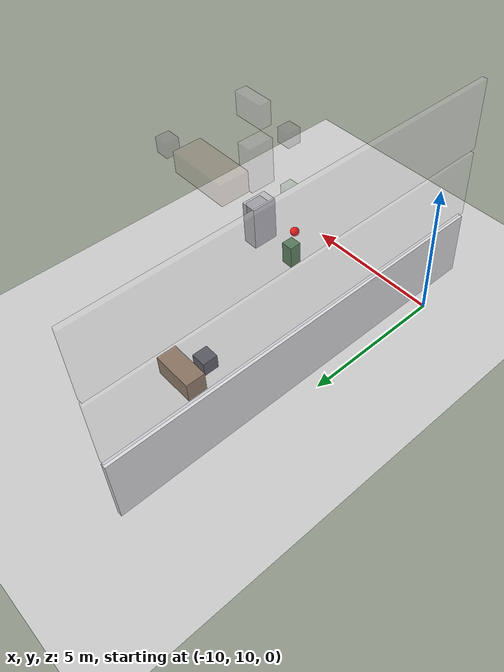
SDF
<sdf version="1.7">
 <world name="generated_world">
  <include><uri>model://sun</uri></include>
  <include><uri>model://ground_plane</uri></include>
  <model name="generated_building">
   <static>true</static>
   <link name="floor_0_room_0_west_wall">
    <pose>-9.4100 14.8650 1.2250 0.0000 0.0000 0.0000</pose>
    <collision name="floor_0_room_0_west_wall_collision">
     <geometry><box><size>0.1800 14.0300 2.4500</size></box></geometry>
    </collision>
    <visual name="floor_0_room_0_west_wall_visual">
     <geometry><box><size>0.1800 14.0300 2.4500</size></box></geometry>
     <material><ambient>0.86 0.86 0.88 1</ambient><diffuse>0.86 0.86 0.88 1</diffuse></material>
    </visual>
    <gravity>false</gravity>
   </link>
   <link name="floor_0_room_0_desk">
    <pose>-7.0000 17.9225 0.4500 0.0000 0.0000 0.0000</pose>
    <collision name="floor_0_room_0_desk_collision">
     <geometry><box><size>1.5000 0.7000 0.7500</size></box></geometry>
    </collision>
    <visual name="floor_0_room_0_desk_visual">
     <geometry><box><size>1.5000 0.7000 0.7500</size></box></geometry>
     <material><ambient>0.54 0.43 0.34 1</ambient><diffuse>0.54 0.43 0.34 1</diffuse></material>
    </visual>
    <gravity>false</gravity>
   </link>
   <link name="floor_0_room_0_chair">
    <pose>-7.0000 17.0225 0.2800 0.0000 0.0000 0.0000</pose>
    <collision name="floor_0_room_0_chair_collision">
     <geometry><box><size>0.5500 0.5500 0.5500</size></box></geometry>
    </collision>
    <visual name="floor_0_room_0_chair_visual">
     <geometry><box><size>0.5500 0.5500 0.5500</size></box></geometry>
     <material><ambient>0.30 0.30 0.34 1</ambient><diffuse>0.30 0.30 0.34 1</diffuse></material>
    </visual>
    <gravity>false</gravity>
   </link>
   <link name="floor_0_room_0_cabinet">
    <pose>-3.6000 11.8075 0.9000 0.0000 0.0000 0.0000</pose>
    <collision name="floor_0_room_0_cabinet_collision">
     <geometry><box><size>0.6000 1.0000 1.8000</size></box></geometry>
    </collision>
    <visual name="floor_0_room_0_cabinet_visual">
     <geometry><box><size>0.6000 1.0000 1.8000</size></box></geometry>
     <material><ambient>0.72 0.72 0.74 1</ambient><diffuse>0.72 0.72 0.74 1</diffuse></material>
    </visual>
    <gravity>false</gravity>
   </link>
   <link name="floor_0_room_0_planter">
    <pose>-5.3000 11.8075 0.4500 0.0000 0.0000 0.0000</pose>
    <collision name="floor_0_room_0_planter_collision">
     <geometry><box><size>0.4500 0.4500 0.9000</size></box></geometry>
    </collision>
    <visual name="floor_0_room_0_planter_visual">
     <geometry><box><size>0.4500 0.4500 0.9000</size></box></geometry>
     <material><ambient>0.28 0.46 0.30 1</ambient><diffuse>0.28 0.46 0.30 1</diffuse></material>
    </visual>
    <gravity>false</gravity>
   </link>
   <link name="floor_1_room_0_west_wall">
    <pose>-9.4100 14.8650 3.8250 0.0000 0.0000 0.0000</pose>
    <collision name="floor_1_room_0_west_wall_collision">
     <geometry><box><size>0.1800 14.0300 2.4500</size></box></geometry>
    </collision>
    <visual name="floor_1_room_0_west_wall_visual">
     <geometry><box><size>0.1800 14.0300 2.4500</size></box></geometry>
     <material><ambient>0.86 0.86 0.88 1</ambient><diffuse>0.86 0.86 0.88 1</diffuse></material>
     <transparency>0.80</transparency>
    </visual>
    <gravity>false</gravity>
   </link>
   <link name="floor_1_room_0_desk">
    <pose>-7.0000 17.9225 3.0500 0.0000 0.0000 0.0000</pose>
    <collision name="floor_1_room_0_desk_collision">
     <geometry><box><size>1.5000 0.7000 0.7500</size></box></geometry>
    </collision>
    <visual name="floor_1_room_0_desk_visual">
     <geometry><box><size>1.5000 0.7000 0.7500</size></box></geometry>
     <material><ambient>0.54 0.43 0.34 1</ambient><diffuse>0.54 0.43 0.34 1</diffuse></material>
     <transparency>0.80</transparency>
    </visual>
    <gravity>false</gravity>
   </link>
   <link name="floor_1_room_0_chair">
    <pose>-7.0000 17.0225 2.8800 0.0000 0.0000 0.0000</pose>
    <collision name="floor_1_room_0_chair_collision">
     <geometry><box><size>0.5500 0.5500 0.5500</size></box></geometry>
    </collision>
    <visual name="floor_1_room_0_chair_visual">
     <geometry><box><size>0.5500 0.5500 0.5500</size></box></geometry>
     <material><ambient>0.30 0.30 0.34 1</ambient><diffuse>0.30 0.30 0.34 1</diffuse></material>
     <transparency>0.80</transparency>
    </visual>
    <gravity>false</gravity>
   </link>
   <link name="floor_1_room_0_cabinet">
    <pose>-3.6000 11.8075 3.5000 0.0000 0.0000 0.0000</pose>
    <collision name="floor_1_room_0_cabinet_collision">
     <geometry><box><size>0.6000 1.0000 1.8000</size></box></geometry>
    </collision>
    <visual name="floor_1_room_0_cabinet_visual">
     <geometry><box><size>0.6000 1.0000 1.8000</size></box></geometry>
     <material><ambient>0.72 0.72 0.74 1</ambient><diffuse>0.72 0.72 0.74 1</diffuse></material>
     <transparency>0.80</transparency>
    </visual>
    <gravity>false</gravity>
   </link>
   <link name="floor_1_room_0_planter">
    <pose>-5.3000 11.8075 3.0500 0.0000 0.0000 0.0000</pose>
    <collision name="floor_1_room_0_planter_collision">
     <geometry><box><size>0.4500 0.4500 0.9000</size></box></geometry>
    </collision>
    <visual name="floor_1_room_0_planter_visual">
     <geometry><box><size>0.4500 0.4500 0.9000</size></box></geometry>
     <material><ambient>0.28 0.46 0.30 1</ambient><diffuse>0.28 0.46 0.30 1</diffuse></material>
     <transparency>0.80</transparency>
    </visual>
    <gravity>false</gravity>
   </link>
   <link name="floor_2_room_0_west_wall">
    <pose>-9.4100 14.8650 6.4250 0.0000 0.0000 0.0000</pose>
    <collision name="floor_2_room_0_west_wall_collision">
     <geometry><box><size>0.1800 14.0300 2.4500</size></box></geometry>
    </collision>
    <visual name="floor_2_room_0_west_wall_visual">
     <geometry><box><size>0.1800 14.0300 2.4500</size></box></geometry>
     <material><ambient>0.86 0.86 0.88 1</ambient><diffuse>0.86 0.86 0.88 1</diffuse></material>
     <transparency>0.80</transparency>
    </visual>
    <gravity>false</gravity>
   </link>
   <link name="floor_2_room_0_table">
    <pose>-5.3000 14.8650 5.6500 0.0000 0.0000 0.0000</pose>
    <collision name="floor_2_room_0_table_collision">
     <geometry><box><size>2.2000 1.0000 0.7500</size></box></geometry>
    </collision>
    <visual name="floor_2_room_0_table_visual">
     <geometry><box><size>2.2000 1.0000 0.7500</size></box></geometry>
     <material><ambient>0.50 0.38 0.28 1</ambient><diffuse>0.50 0.38 0.28 1</diffuse></material>
     <transparency>0.80</transparency>
    </visual>
    <gravity>false</gravity>
   </link>
   <link name="floor_2_room_0_chair_south">
    <pose>-5.3000 11.8075 5.4800 0.0000 0.0000 0.0000</pose>
    <collision name="floor_2_room_0_chair_south_collision">
     <geometry><box><size>0.5000 0.5000 0.5500</size></box></geometry>
    </collision>
    <visual name="floor_2_room_0_chair_south_visual">
     <geometry><box><size>0.5000 0.5000 0.5500</size></box></geometry>
     <material><ambient>0.30 0.30 0.34 1</ambient><diffuse>0.30 0.30 0.34 1</diffuse></material>
     <transparency>0.80</transparency>
    </visual>
    <gravity>false</gravity>
   </link>
   <link name="floor_2_room_0_chair_west">
    <pose>-7.4500 14.8650 5.4800 0.0000 0.0000 1.5700</pose>
    <collision name="floor_2_room_0_chair_west_collision">
     <geometry><box><size>0.5000 0.5000 0.5500</size></box></geometry>
    </collision>
    <visual name="floor_2_room_0_chair_west_visual">
     <geometry><box><size>0.5000 0.5000 0.5500</size></box></geometry>
     <material><ambient>0.30 0.30 0.34 1</ambient><diffuse>0.30 0.30 0.34 1</diffuse></material>
     <transparency>0.80</transparency>
    </visual>
    <gravity>false</gravity>
   </link>
   <link name="floor_2_room_0_chair_east">
    <pose>-3.1500 14.8650 5.4800 0.0000 0.0000 1.5700</pose>
    <collision name="floor_2_room_0_chair_east_collision">
     <geometry><box><size>0.5000 0.5000 0.5500</size></box></geometry>
    </collision>
    <visual name="floor_2_room_0_chair_east_visual">
     <geometry><box><size>0.5000 0.5000 0.5500</size></box></geometry>
     <material><ambient>0.30 0.30 0.34 1</ambient><diffuse>0.30 0.30 0.34 1</diffuse></material>
     <transparency>0.80</transparency>
    </visual>
    <gravity>false</gravity>
   </link>
   <link name="floor_2_room_0_credenza">
    <pose>-3.6000 11.8075 5.6500 0.0000 0.0000 0.0000</pose>
    <collision name="floor_2_room_0_credenza_collision">
     <geometry><box><size>1.2000 0.4500 0.9000</size></box></geometry>
    </collision>
    <visual name="floor_2_room_0_credenza_visual">
     <geometry><box><size>1.2000 0.4500 0.9000</size></box></geometry>
     <material><ambient>0.72 0.72 0.74 1</ambient><diffuse>0.72 0.72 0.74 1</diffuse></material>
     <transparency>0.80</transparency>
    </visual>
    <gravity>false</gravity>
   </link>
  </model>
  <model name="danger_red_sphere_02">
   <static>true</static>
   <pose>-6.475664 12.688036 2.750000 0.000000 0.000000 0.000000</pose>
   <link name="link">
    <collision name="collision"><geometry><sphere><radius>0.150</radius></sphere></geometry></collision>
    <visual name="visual">
     <geometry><sphere><radius>0.150</radius></sphere></geometry>
     <material><ambient>1.0 0.0 0.0 1.0</ambient><diffuse>1.0 0.0 0.0 1.0</diffuse></material>
    </visual>
   </link>
  </model>
 </world>
</sdf>
